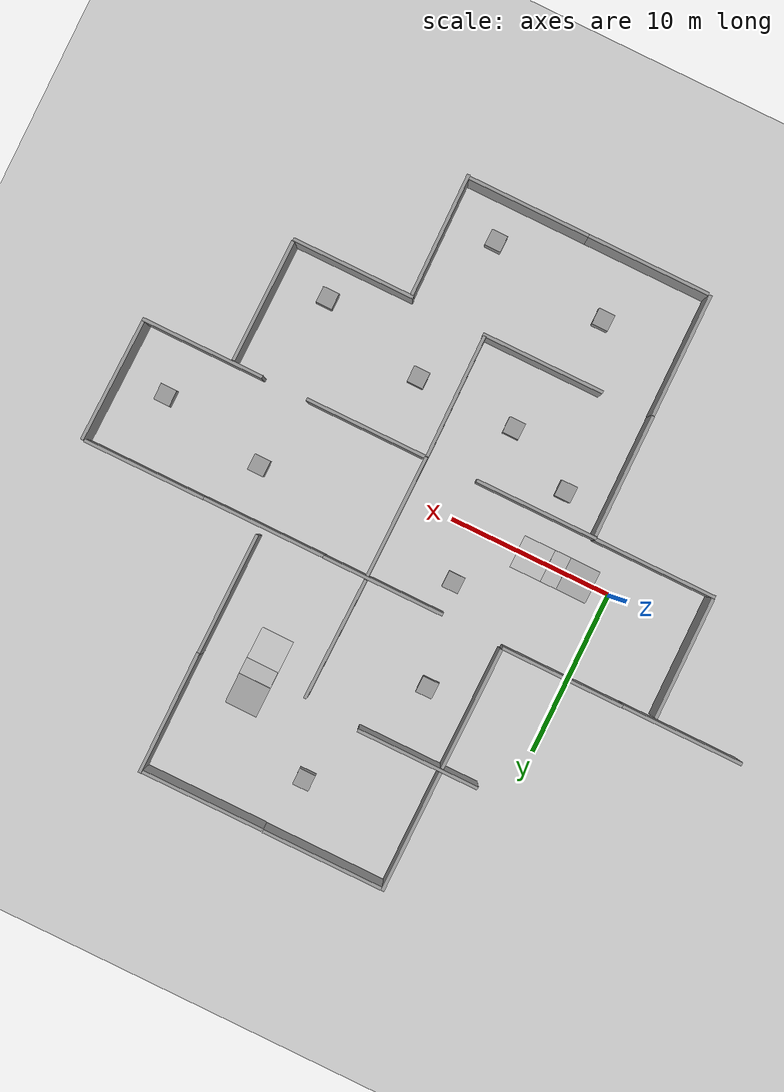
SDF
<sdf version="1.6">
 <world name="default">
  <model name="ground_plane">
   <static>1</static>
   <link name="link">
    <collision name="collision">
     <geometry><plane><normal>0 0 1</normal><size>100 100</size></plane></geometry>
     <surface><friction><ode><mu>100</mu><mu2>50</mu2></ode></friction></surface>
    </collision>
    <visual name="visual">
     <cast_shadows>0</cast_shadows>
     <geometry><plane><normal>0 0 1</normal><size>100 100</size></plane></geometry>
     <material>
      <script><uri>file://media/materials/scripts/gazebo.material</uri><name>Gazebo/Grey</name></script>
     </material>
    </visual>
   </link>
  </model>
  <light name="sun" type="directional">
   <pose>0 0 10 0 -0 0</pose>
   <diffuse>0.8 0.8 0.8 1</diffuse>
   <specular>0.1 0.1 0.1 1</specular>
   <attenuation>
    <range>1000</range>
    <constant>0.9</constant>
    <linear>0.01</linear>
    <quadratic>0.001</quadratic>
   </attenuation>
   <direction>-0.5 0.5 -1</direction>
  </light>
  <model name="slope">
   <static>1</static>
   <link name="slope_up">
    <pose>1.95534 0 0.29552 0 -0.3 0</pose>
    <collision name="collision"><geometry><box><size>2 2 0.01</size></box></geometry></collision>
    <visual name="visual"><geometry><box><size>2 2 0.01</size></box></geometry></visual>
   </link>
   <link name="slope_zero">
    <pose>3.41067 0 0.59104 0 -0 0</pose>
    <collision name="collision"><geometry><box><size>1 2 0.01</size></box></geometry></collision>
    <visual name="visual"><geometry><box><size>1 2 0.01</size></box></geometry></visual>
   </link>
   <link name="slope_down">
    <pose>4.86601 0 0.29552 0 0.3 0</pose>
    <collision name="collision"><geometry><box><size>2 2 0.01</size></box></geometry></collision>
    <visual name="visual"><geometry><box><size>2 2 0.01</size></box></geometry></visual>
   </link>
  </model>
  <physics name="default_physics" default="0" type="ode">
   <max_step_size>0.001</max_step_size>
   <real_time_factor>1</real_time_factor>
   <real_time_update_rate>1000</real_time_update_rate>
  </physics>
  <gravity>0 0 -9.81</gravity>
  <magnetic_field>6e-06 2.3e-05 -4.2e-05</magnetic_field>
  <atmosphere type="adiabatic"/>
  <scene><ambient>0.4 0.4 0.4 1</ambient><background>0.7 0.7 0.7 1</background><shadows>1</shadows></scene>
  <spherical_coordinates>
   <surface_model>EARTH_WGS84</surface_model>
   <latitude_deg>0</latitude_deg>
   <longitude_deg>0</longitude_deg>
   <elevation>0</elevation>
   <heading_deg>0</heading_deg>
  </spherical_coordinates>
  <model name="grey_wall">
   <static>1</static>
   <link name="link">
    <pose>0 0 1.4 0 -0 0</pose>
    <collision name="collision"><geometry><box><size>7.5 0.2 2.8</size></box></geometry></collision>
    <visual name="visual">
     <cast_shadows>0</cast_shadows>
     <geometry><box><size>7.5 0.2 2.8</size></box></geometry>
     <material>
      <script>
       <uri>model://grey_wall/materials/scripts</uri>
       <uri>model://grey_wall/materials/textures</uri>
       <name>vrc/grey_wall</name>
      </script>
     </material>
    </visual>
   </link>
   <pose>0.576021 5.30516 0 0 -0 0</pose>
  </model>
  <model name="grey_wall_0">
   <static>1</static>
   <link name="link">
    <pose>0 0 1.4 0 -0 0</pose>
    <collision name="collision"><geometry><box><size>7.5 0.2 2.8</size></box></geometry></collision>
    <visual name="visual">
     <cast_shadows>0</cast_shadows>
     <geometry><box><size>7.5 0.2 2.8</size></box></geometry>
     <material>
      <script>
       <uri>model://grey_wall/materials/scripts</uri>
       <uri>model://grey_wall/materials/textures</uri>
       <name>vrc/grey_wall</name>
      </script>
     </material>
    </visual>
   </link>
   <pose>-6.88947 5.28874 0 0 -0 0</pose>
  </model>
  <model name="grey_wall_1">
   <static>1</static>
   <link name="link">
    <pose>0 0 1.4 0 -0 0</pose>
    <collision name="collision"><geometry><box><size>7.5 0.2 2.8</size></box></geometry></collision>
    <visual name="visual">
     <cast_shadows>0</cast_shadows>
     <geometry><box><size>7.5 0.2 2.8</size></box></geometry>
     <material>
      <script>
       <uri>model://grey_wall/materials/scripts</uri>
       <uri>model://grey_wall/materials/textures</uri>
       <name>vrc/grey_wall</name>
      </script>
     </material>
    </visual>
   </link>
   <pose>11.8983 5.08766 0 0 -0 0</pose>
  </model>
  <model name="grey_wall_2">
   <static>1</static>
   <link name="link">
    <pose>0 0 1.4 0 -0 0</pose>
    <collision name="collision"><geometry><box><size>7.5 0.2 2.8</size></box></geometry></collision>
    <visual name="visual">
     <cast_shadows>0</cast_shadows>
     <geometry><box><size>7.5 0.2 2.8</size></box></geometry>
     <material>
      <script>
       <uri>model://grey_wall/materials/scripts</uri>
       <uri>model://grey_wall/materials/textures</uri>
       <name>vrc/grey_wall</name>
      </script>
     </material>
    </visual>
   </link>
   <pose>12.8945 1.25724 0 0 0 -1.57903</pose>
  </model>
  <model name="grey_wall_3">
   <static>1</static>
   <link name="link">
    <pose>0 0 1.4 0 -0 0</pose>
    <collision name="collision"><geometry><box><size>7.5 0.2 2.8</size></box></geometry></collision>
    <visual name="visual">
     <cast_shadows>0</cast_shadows>
     <geometry><box><size>7.5 0.2 2.8</size></box></geometry>
     <material>
      <script>
       <uri>model://grey_wall/materials/scripts</uri>
       <uri>model://grey_wall/materials/textures</uri>
       <name>vrc/grey_wall</name>
      </script>
     </material>
    </visual>
   </link>
   <pose>6.00389 -2.53459 0 0 -0 0</pose>
  </model>
  <model name="grey_wall_4">
   <static>1</static>
   <link name="link">
    <pose>0 0 1.4 0 -0 0</pose>
    <collision name="collision"><geometry><box><size>7.5 0.2 2.8</size></box></geometry></collision>
    <visual name="visual">
     <cast_shadows>0</cast_shadows>
     <geometry><box><size>7.5 0.2 2.8</size></box></geometry>
     <material>
      <script>
       <uri>model://grey_wall/materials/scripts</uri>
       <uri>model://grey_wall/materials/textures</uri>
       <name>vrc/grey_wall</name>
      </script>
     </material>
    </visual>
   </link>
   <pose>-1.44194 -2.48136 0 0 -0 0</pose>
  </model>
  <model name="grey_wall_5">
   <static>1</static>
   <link name="link">
    <pose>0 0 1.4 0 -0 0</pose>
    <collision name="collision"><geometry><box><size>7.5 0.2 2.8</size></box></geometry></collision>
    <visual name="visual">
     <cast_shadows>0</cast_shadows>
     <geometry><box><size>7.5 0.2 2.8</size></box></geometry>
     <material>
      <script>
       <uri>model://grey_wall/materials/scripts</uri>
       <uri>model://grey_wall/materials/textures</uri>
       <name>vrc/grey_wall</name>
      </script>
     </material>
    </visual>
   </link>
   <pose>12.8759 -6.27549 0 0 0 -1.56242</pose>
  </model>
  <model name="grey_wall_6">
   <static>1</static>
   <link name="link">
    <pose>0 0 1.4 0 -0 0</pose>
    <collision name="collision"><geometry><box><size>7.5 0.2 2.8</size></box></geometry></collision>
    <visual name="visual">
     <cast_shadows>0</cast_shadows>
     <geometry><box><size>7.5 0.2 2.8</size></box></geometry>
     <material>
      <script>
       <uri>model://grey_wall/materials/scripts</uri>
       <uri>model://grey_wall/materials/textures</uri>
       <name>vrc/grey_wall</name>
      </script>
     </material>
    </visual>
   </link>
   <pose>4.36648 9.14808 0 0 -0 1.56331</pose>
  </model>
  <model name="grey_wall_7">
   <static>1</static>
   <link name="link">
    <pose>0 0 1.4 0 -0 0</pose>
    <collision name="collision"><geometry><box><size>7.5 0.2 2.8</size></box></geometry></collision>
    <visual name="visual">
     <cast_shadows>0</cast_shadows>
     <geometry><box><size>7.5 0.2 2.8</size></box></geometry>
     <material>
      <script>
       <uri>model://grey_wall/materials/scripts</uri>
       <uri>model://grey_wall/materials/textures</uri>
       <name>vrc/grey_wall</name>
      </script>
     </material>
    </visual>
   </link>
   <pose>-5.13215 1.35158 0 0 0 -1.56467</pose>
  </model>
  <model name="grey_wall_8">
   <static>1</static>
   <link name="link">
    <pose>0 0 1.4 0 -0 0</pose>
    <collision name="collision"><geometry><box><size>7.5 0.2 2.8</size></box></geometry></collision>
    <visual name="visual">
     <cast_shadows>0</cast_shadows>
     <geometry><box><size>7.5 0.2 2.8</size></box></geometry>
     <material>
      <script>
       <uri>model://grey_wall/materials/scripts</uri>
       <uri>model://grey_wall/materials/textures</uri>
       <name>vrc/grey_wall</name>
      </script>
     </material>
    </visual>
   </link>
   <pose>12.9863 8.95318 0 0 0 -1.59136</pose>
  </model>
  <model name="grey_wall_9">
   <static>1</static>
   <link name="link">
    <pose>0 0 1.4 0 -0 0</pose>
    <collision name="collision"><geometry><box><size>7.5 0.2 2.8</size></box></geometry></collision>
    <visual name="visual">
     <cast_shadows>0</cast_shadows>
     <geometry><box><size>7.5 0.2 2.8</size></box></geometry>
     <material>
      <script>
       <uri>model://grey_wall/materials/scripts</uri>
       <uri>model://grey_wall/materials/textures</uri>
       <name>vrc/grey_wall</name>
      </script>
     </material>
    </visual>
   </link>
   <pose>5.86395 13.0144 0 0 -0 0</pose>
  </model>
  <model name="grey_wall_10">
   <static>1</static>
   <link name="link">
    <pose>0 0 1.4 0 -0 0</pose>
    <collision name="collision"><geometry><box><size>7.5 0.2 2.8</size></box></geometry></collision>
    <visual name="visual">
     <cast_shadows>0</cast_shadows>
     <geometry><box><size>7.5 0.2 2.8</size></box></geometry>
     <material>
      <script>
       <uri>model://grey_wall/materials/scripts</uri>
       <uri>model://grey_wall/materials/textures</uri>
       <name>vrc/grey_wall</name>
      </script>
     </material>
    </visual>
   </link>
   <pose>2.40006 -6.39178 0 0 0 -1.56521</pose>
  </model>
  <model name="grey_wall_11">
   <static>1</static>
   <link name="link">
    <pose>0 0 1.4 0 -0 0</pose>
    <collision name="collision"><geometry><box><size>7.5 0.2 2.8</size></box></geometry></collision>
    <visual name="visual">
     <cast_shadows>0</cast_shadows>
     <geometry><box><size>7.5 0.2 2.8</size></box></geometry>
     <material>
      <script>
       <uri>model://grey_wall/materials/scripts</uri>
       <uri>model://grey_wall/materials/textures</uri>
       <name>vrc/grey_wall</name>
      </script>
     </material>
    </visual>
   </link>
   <pose>9.28642 -10.0891 0 0 -0 0</pose>
  </model>
  <model name="grey_wall_12">
   <static>1</static>
   <link name="link">
    <pose>0 0 1.4 0 -0 0</pose>
    <collision name="collision"><geometry><box><size>7.5 0.2 2.8</size></box></geometry></collision>
    <visual name="visual">
     <cast_shadows>0</cast_shadows>
     <geometry><box><size>7.5 0.2 2.8</size></box></geometry>
     <material>
      <script>
       <uri>model://grey_wall/materials/scripts</uri>
       <uri>model://grey_wall/materials/textures</uri>
       <name>vrc/grey_wall</name>
      </script>
     </material>
    </visual>
   </link>
   <pose>2.45939 -13.9073 0 0 0 -1.56481</pose>
  </model>
  <model name="grey_wall_13">
   <static>1</static>
   <link name="link">
    <pose>0 0 1.4 0 -0 0</pose>
    <collision name="collision"><geometry><box><size>7.5 0.2 2.8</size></box></geometry></collision>
    <visual name="visual">
     <cast_shadows>0</cast_shadows>
     <geometry><box><size>7.5 0.2 2.8</size></box></geometry>
     <material>
      <script>
       <uri>model://grey_wall/materials/scripts</uri>
       <uri>model://grey_wall/materials/textures</uri>
       <name>vrc/grey_wall</name>
      </script>
     </material>
    </visual>
   </link>
   <pose>6.35281 -17.6604 0 0 -0 0</pose>
  </model>
  <model name="grey_wall_15">
   <static>1</static>
   <link name="link">
    <pose>0 0 1.4 0 -0 0</pose>
    <collision name="collision"><geometry><box><size>7.5 0.2 2.8</size></box></geometry></collision>
    <visual name="visual">
     <cast_shadows>0</cast_shadows>
     <geometry><box><size>7.5 0.2 2.8</size></box></geometry>
     <material>
      <script>
       <uri>model://grey_wall/materials/scripts</uri>
       <uri>model://grey_wall/materials/textures</uri>
       <name>vrc/grey_wall</name>
      </script>
     </material>
    </visual>
   </link>
   <pose>13.8207 -17.6624 0 0 -0 0</pose>
  </model>
  <model name="grey_wall_16">
   <static>1</static>
   <link name="link">
    <pose>0 0 1.4 0 -0 0</pose>
    <collision name="collision"><geometry><box><size>7.5 0.2 2.8</size></box></geometry></collision>
    <visual name="visual">
     <cast_shadows>0</cast_shadows>
     <geometry><box><size>7.5 0.2 2.8</size></box></geometry>
     <material>
      <script>
       <uri>model://grey_wall/materials/scripts</uri>
       <uri>model://grey_wall/materials/textures</uri>
       <name>vrc/grey_wall</name>
      </script>
     </material>
    </visual>
   </link>
   <pose>4.39951 16.7833 0 0 0 -1.5746</pose>
  </model>
  <model name="grey_wall_17">
   <static>1</static>
   <link name="link">
    <pose>0 0 1.4 0 -0 0</pose>
    <collision name="collision"><geometry><box><size>7.5 0.2 2.8</size></box></geometry></collision>
    <visual name="visual">
     <cast_shadows>0</cast_shadows>
     <geometry><box><size>7.5 0.2 2.8</size></box></geometry>
     <material>
      <script>
       <uri>model://grey_wall/materials/scripts</uri>
       <uri>model://grey_wall/materials/textures</uri>
       <name>vrc/grey_wall</name>
      </script>
     </material>
    </visual>
   </link>
   <pose>8.18387 20.4446 0 0 -0 0</pose>
  </model>
  <model name="grey_wall_18">
   <static>1</static>
   <link name="link">
    <pose>0 0 1.4 0 -0 0</pose>
    <collision name="collision"><geometry><box><size>7.5 0.2 2.8</size></box></geometry></collision>
    <visual name="visual">
     <cast_shadows>0</cast_shadows>
     <geometry><box><size>7.5 0.2 2.8</size></box></geometry>
     <material>
      <script>
       <uri>model://grey_wall/materials/scripts</uri>
       <uri>model://grey_wall/materials/textures</uri>
       <name>vrc/grey_wall</name>
      </script>
     </material>
    </visual>
   </link>
   <pose>15.7329 20.4148 0 0 -0 0</pose>
  </model>
  <model name="grey_wall_19">
   <static>1</static>
   <link name="link">
    <pose>0 0 1.4 0 -0 0</pose>
    <collision name="collision"><geometry><box><size>7.5 0.2 2.8</size></box></geometry></collision>
    <visual name="visual">
     <cast_shadows>0</cast_shadows>
     <geometry><box><size>7.5 0.2 2.8</size></box></geometry>
     <material>
      <script>
       <uri>model://grey_wall/materials/scripts</uri>
       <uri>model://grey_wall/materials/textures</uri>
       <name>vrc/grey_wall</name>
      </script>
     </material>
    </visual>
   </link>
   <pose>19.5878 16.7852 0 0 -0 1.56817</pose>
  </model>
  <model name="grey_wall_20">
   <static>1</static>
   <link name="link">
    <pose>0 0 1.4 0 -0 0</pose>
    <collision name="collision"><geometry><box><size>7.5 0.2 2.8</size></box></geometry></collision>
    <visual name="visual">
     <cast_shadows>0</cast_shadows>
     <geometry><box><size>7.5 0.2 2.8</size></box></geometry>
     <material>
      <script>
       <uri>model://grey_wall/materials/scripts</uri>
       <uri>model://grey_wall/materials/textures</uri>
       <name>vrc/grey_wall</name>
      </script>
     </material>
    </visual>
   </link>
   <pose>19.5369 9.35748 0 0 0 -1.57764</pose>
  </model>
  <model name="grey_wall_21">
   <static>1</static>
   <link name="link">
    <pose>0 0 1.4 0 -0 0</pose>
    <collision name="collision"><geometry><box><size>7.5 0.2 2.8</size></box></geometry></collision>
    <visual name="visual">
     <cast_shadows>0</cast_shadows>
     <geometry><box><size>7.5 0.2 2.8</size></box></geometry>
     <material>
      <script>
       <uri>model://grey_wall/materials/scripts</uri>
       <uri>model://grey_wall/materials/textures</uri>
       <name>vrc/grey_wall</name>
      </script>
     </material>
    </visual>
   </link>
   <pose>19.3742 5.06733 0 0 -0 0</pose>
  </model>
  <model name="grey_wall_22">
   <static>1</static>
   <link name="link">
    <pose>0 0 1.4 0 -0 0</pose>
    <collision name="collision"><geometry><box><size>7.5 0.2 2.8</size></box></geometry></collision>
    <visual name="visual">
     <cast_shadows>0</cast_shadows>
     <geometry><box><size>7.5 0.2 2.8</size></box></geometry>
     <material>
      <script>
       <uri>model://grey_wall/materials/scripts</uri>
       <uri>model://grey_wall/materials/textures</uri>
       <name>vrc/grey_wall</name>
      </script>
     </material>
    </visual>
   </link>
   <pose>17.6387 -14.0572 0 0 0 -1.55991</pose>
  </model>
  <model name="grey_wall_23">
   <static>1</static>
   <link name="link">
    <pose>0 0 1.4 0 -0 0</pose>
    <collision name="collision"><geometry><box><size>7.5 0.2 2.8</size></box></geometry></collision>
    <visual name="visual">
     <cast_shadows>0</cast_shadows>
     <geometry><box><size>7.5 0.2 2.8</size></box></geometry>
     <material>
      <script>
       <uri>model://grey_wall/materials/scripts</uri>
       <uri>model://grey_wall/materials/textures</uri>
       <name>vrc/grey_wall</name>
      </script>
     </material>
    </visual>
   </link>
   <pose>21.215 -10.2285 0 0 -0 0</pose>
  </model>
  <model name="grey_wall_24">
   <static>1</static>
   <link name="link">
    <pose>0 0 1.4 0 -0 0</pose>
    <collision name="collision"><geometry><box><size>7.5 0.2 2.8</size></box></geometry></collision>
    <visual name="visual">
     <cast_shadows>0</cast_shadows>
     <geometry><box><size>7.5 0.2 2.8</size></box></geometry>
     <material>
      <script>
       <uri>model://grey_wall/materials/scripts</uri>
       <uri>model://grey_wall/materials/textures</uri>
       <name>vrc/grey_wall</name>
      </script>
     </material>
    </visual>
   </link>
   <pose>24.9569 -6.36203 0 0 0 -1.58235</pose>
  </model>
  <model name="grey_wall_25">
   <static>1</static>
   <link name="link">
    <pose>0 0 1.4 0 -0 0</pose>
    <collision name="collision"><geometry><box><size>7.5 0.2 2.8</size></box></geometry></collision>
    <visual name="visual">
     <cast_shadows>0</cast_shadows>
     <geometry><box><size>7.5 0.2 2.8</size></box></geometry>
     <material>
      <script>
       <uri>model://grey_wall/materials/scripts</uri>
       <uri>model://grey_wall/materials/textures</uri>
       <name>vrc/grey_wall</name>
      </script>
     </material>
    </visual>
   </link>
   <pose>26.8227 5.08278 0 0 -0 0</pose>
  </model>
  <model name="grey_wall_26">
   <static>1</static>
   <link name="link">
    <pose>0 0 1.4 0 -0 0</pose>
    <collision name="collision"><geometry><box><size>7.5 0.2 2.8</size></box></geometry></collision>
    <visual name="visual">
     <cast_shadows>0</cast_shadows>
     <geometry><box><size>7.5 0.2 2.8</size></box></geometry>
     <material>
      <script>
       <uri>model://grey_wall/materials/scripts</uri>
       <uri>model://grey_wall/materials/textures</uri>
       <name>vrc/grey_wall</name>
      </script>
     </material>
    </visual>
   </link>
   <pose>26.8806 -2.48638 0 0 -0 0</pose>
  </model>
  <model name="grey_wall_27">
   <static>1</static>
   <link name="link">
    <pose>0 0 1.4 0 -0 0</pose>
    <collision name="collision"><geometry><box><size>7.5 0.2 2.8</size></box></geometry></collision>
    <visual name="visual">
     <cast_shadows>0</cast_shadows>
     <geometry><box><size>7.5 0.2 2.8</size></box></geometry>
     <material>
      <script>
       <uri>model://grey_wall/materials/scripts</uri>
       <uri>model://grey_wall/materials/textures</uri>
       <name>vrc/grey_wall</name>
      </script>
     </material>
    </visual>
   </link>
   <pose>30.6146 1.37442 0 0 0 -1.59508</pose>
  </model>
  <model name="grey_wall_28">
   <static>1</static>
   <link name="link">
    <pose>0 0 1.4 0 -0 0</pose>
    <collision name="collision"><geometry><box><size>7.5 0.2 2.8</size></box></geometry></collision>
    <visual name="visual">
     <cast_shadows>0</cast_shadows>
     <geometry><box><size>7.5 0.2 2.8</size></box></geometry>
     <material>
      <script>
       <uri>model://grey_wall/materials/scripts</uri>
       <uri>model://grey_wall/materials/textures</uri>
       <name>vrc/grey_wall</name>
      </script>
     </material>
    </visual>
   </link>
   <pose>16.6058 -2.4643 0 0 -0 0</pose>
  </model>
  <model name="slope_clone">
   <static>1</static>
   <pose>16.1488 16.1639 0 0 0 -1.58105</pose>
   <link name="slope_up">
    <pose>1.95534 0 0.29552 0 -0.3 0</pose>
    <collision name="collision"><geometry><box><size>2 2 0.01</size></box></geometry></collision>
    <visual name="visual"><geometry><box><size>2 2 0.01</size></box></geometry></visual>
   </link>
   <link name="slope_zero">
    <pose>3.41067 0 0.59104 0 -0 0</pose>
    <collision name="collision"><geometry><box><size>1 2 0.01</size></box></geometry></collision>
    <visual name="visual"><geometry><box><size>1 2 0.01</size></box></geometry></visual>
   </link>
   <link name="slope_down">
    <pose>4.86601 0 0.29552 0 0.3 0</pose>
    <collision name="collision"><geometry><box><size>2 2 0.01</size></box></geometry></collision>
    <visual name="visual"><geometry><box><size>2 2 0.01</size></box></geometry></visual>
   </link>
  </model>
  <model name="unit_box_0">
   <pose>9.10914 -6.22269 0.499995 0 1e-05 0</pose>
   <link name="link">
    <inertial>
     <mass>1</mass>
     <inertia>
      <ixx>0.166667</ixx>
      <ixy>0</ixy>
      <ixz>0</ixz>
      <iyy>0.166667</iyy>
      <iyz>0</iyz>
      <izz>0.166667</izz>
     </inertia>
    </inertial>
    <collision name="collision"><geometry><box><size>1 1 1</size></box></geometry></collision>
    <visual name="visual">
     <geometry><box><size>1 1 1</size></box></geometry>
     <material>
      <script><name>Gazebo/Grey</name><uri>file://media/materials/scripts/gazebo.material</uri></script>
     </material>
    </visual>
   </link>
  </model>
  <model name="unit_box_1">
   <pose>4.86022 -4.26474 0.499995 0 1e-05 0</pose>
   <link name="link">
    <inertial>
     <mass>1</mass>
     <inertia>
      <ixx>0.166667</ixx>
      <ixy>0</ixy>
      <ixz>0</ixz>
      <iyy>0.166667</iyy>
      <iyz>0</iyz>
      <izz>0.166667</izz>
     </inertia>
    </inertial>
    <collision name="collision"><geometry><box><size>1 1 1</size></box></geometry></collision>
    <visual name="visual">
     <geometry><box><size>1 1 1</size></box></geometry>
     <material>
      <script><name>Gazebo/Grey</name><uri>file://media/materials/scripts/gazebo.material</uri></script>
     </material>
    </visual>
   </link>
  </model>
  <model name="unit_box_2">
   <pose>11.1011 17.0797 0.499995 1e-05 -0 0</pose>
   <link name="link">
    <inertial>
     <mass>1</mass>
     <inertia>
      <ixx>0.166667</ixx>
      <ixy>0</ixy>
      <ixz>0</ixz>
      <iyy>0.166667</iyy>
      <iyz>0</iyz>
      <izz>0.166667</izz>
     </inertia>
    </inertial>
    <collision name="collision"><geometry><box><size>1 1 1</size></box></geometry></collision>
    <visual name="visual">
     <geometry><box><size>1 1 1</size></box></geometry>
     <material>
      <script><name>Gazebo/Grey</name><uri>file://media/materials/scripts/gazebo.material</uri></script>
     </material>
    </visual>
   </link>
  </model>
  <model name="unit_box_3">
   <pose>7.07102 9.26278 0.499995 0 1e-05 0</pose>
   <link name="link">
    <inertial>
     <mass>1</mass>
     <inertia>
      <ixx>0.166667</ixx>
      <ixy>0</ixy>
      <ixz>0</ixz>
      <iyy>0.166667</iyy>
      <iyz>0</iyz>
      <izz>0.166667</izz>
     </inertia>
    </inertial>
    <collision name="collision"><geometry><box><size>1 1 1</size></box></geometry></collision>
    <visual name="visual">
     <geometry><box><size>1 1 1</size></box></geometry>
     <material>
      <script><name>Gazebo/Grey</name><uri>file://media/materials/scripts/gazebo.material</uri></script>
     </material>
    </visual>
   </link>
  </model>
  <model name="unit_box_4">
   <pose>8.36827 3.20481 0.499995 1e-05 -0 0</pose>
   <link name="link">
    <inertial>
     <mass>1</mass>
     <inertia>
      <ixx>0.166667</ixx>
      <ixy>0</ixy>
      <ixz>0</ixz>
      <iyy>0.166667</iyy>
      <iyz>0</iyz>
      <izz>0.166667</izz>
     </inertia>
    </inertial>
    <collision name="collision"><geometry><box><size>1 1 1</size></box></geometry></collision>
    <visual name="visual">
     <geometry><box><size>1 1 1</size></box></geometry>
     <material>
      <script><name>Gazebo/Grey</name><uri>file://media/materials/scripts/gazebo.material</uri></script>
     </material>
    </visual>
   </link>
  </model>
  <model name="unit_box_5">
   <pose>7.23531 -14.0246 0.499995 0 1e-05 0</pose>
   <link name="link">
    <inertial>
     <mass>1</mass>
     <inertia>
      <ixx>0.166667</ixx>
      <ixy>0</ixy>
      <ixz>0</ixz>
      <iyy>0.166667</iyy>
      <iyz>0</iyz>
      <izz>0.166667</izz>
     </inertia>
    </inertial>
    <collision name="collision"><geometry><box><size>1 1 1</size></box></geometry></collision>
    <visual name="visual">
     <geometry><box><size>1 1 1</size></box></geometry>
     <material>
      <script><name>Gazebo/Grey</name><uri>file://media/materials/scripts/gazebo.material</uri></script>
     </material>
    </visual>
   </link>
  </model>
  <model name="unit_box_6">
   <pose>14.7134 -15.4044 0.499995 0 1e-05 0</pose>
   <link name="link">
    <inertial>
     <mass>1</mass>
     <inertia>
      <ixx>0.166667</ixx>
      <ixy>0</ixy>
      <ixz>0</ixz>
      <iyy>0.166667</iyy>
      <iyz>0</iyz>
      <izz>0.166667</izz>
     </inertia>
    </inertial>
    <collision name="collision"><geometry><box><size>1 1 1</size></box></geometry></collision>
    <visual name="visual">
     <geometry><box><size>1 1 1</size></box></geometry>
     <material>
      <script><name>Gazebo/Grey</name><uri>file://media/materials/scripts/gazebo.material</uri></script>
     </material>
    </visual>
   </link>
  </model>
  <model name="unit_box_7">
   <pose>15.2868 -6.44712 0.499995 0 1e-05 0</pose>
   <link name="link">
    <inertial>
     <mass>1</mass>
     <inertia>
      <ixx>0.166667</ixx>
      <ixy>0</ixy>
      <ixz>0</ixz>
      <iyy>0.166667</iyy>
      <iyz>0</iyz>
      <izz>0.166667</izz>
     </inertia>
    </inertial>
    <collision name="collision"><geometry><box><size>1 1 1</size></box></geometry></collision>
    <visual name="visual">
     <geometry><box><size>1 1 1</size></box></geometry>
     <material>
      <script><name>Gazebo/Grey</name><uri>file://media/materials/scripts/gazebo.material</uri></script>
     </material>
    </visual>
   </link>
  </model>
  <model name="unit_box_8">
   <pose>21.9383 -8.24721 0.499995 0 1e-05 0</pose>
   <link name="link">
    <inertial>
     <mass>1</mass>
     <inertia>
      <ixx>0.166667</ixx>
      <ixy>0</ixy>
      <ixz>0</ixz>
      <iyy>0.166667</iyy>
      <iyz>0</iyz>
      <izz>0.166667</izz>
     </inertia>
    </inertial>
    <collision name="collision"><geometry><box><size>1 1 1</size></box></geometry></collision>
    <visual name="visual">
     <geometry><box><size>1 1 1</size></box></geometry>
     <material>
      <script><name>Gazebo/Grey</name><uri>file://media/materials/scripts/gazebo.material</uri></script>
     </material>
    </visual>
   </link>
  </model>
  <model name="unit_box_9">
   <pose>21.2736 2.05131 0.499995 0 1e-05 0</pose>
   <link name="link">
    <inertial>
     <mass>1</mass>
     <inertia>
      <ixx>0.166667</ixx>
      <ixy>0</ixy>
      <ixz>0</ixz>
      <iyy>0.166667</iyy>
      <iyz>0</iyz>
      <izz>0.166667</izz>
     </inertia>
    </inertial>
    <collision name="collision"><geometry><box><size>1 1 1</size></box></geometry></collision>
    <visual name="visual">
     <geometry><box><size>1 1 1</size></box></geometry>
     <material>
      <script><name>Gazebo/Grey</name><uri>file://media/materials/scripts/gazebo.material</uri></script>
     </material>
    </visual>
   </link>
  </model>
  <model name="unit_box_10">
   <pose>27.8445 0.784823 0.499995 0 1e-05 0</pose>
   <link name="link">
    <inertial>
     <mass>1</mass>
     <inertia>
      <ixx>0.166667</ixx>
      <ixy>0</ixy>
      <ixz>0</ixz>
      <iyy>0.166667</iyy>
      <iyz>0</iyz>
      <izz>0.166667</izz>
     </inertia>
    </inertial>
    <collision name="collision"><geometry><box><size>1 1 1</size></box></geometry></collision>
    <visual name="visual">
     <geometry><box><size>1 1 1</size></box></geometry>
     <material>
      <script><name>Gazebo/Grey</name><uri>file://media/materials/scripts/gazebo.material</uri></script>
     </material>
    </visual>
   </link>
  </model>
 </world>
</sdf>
